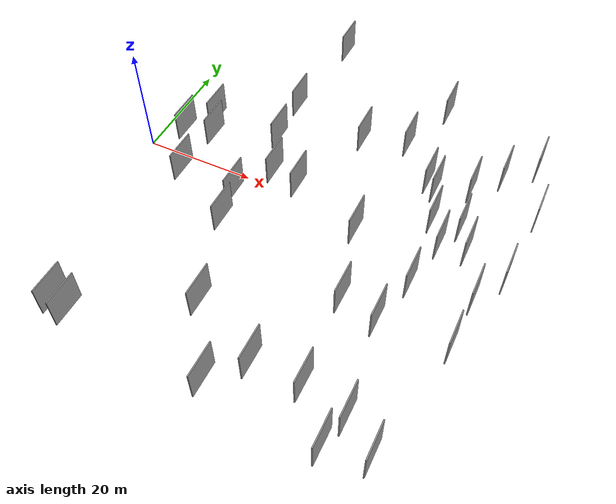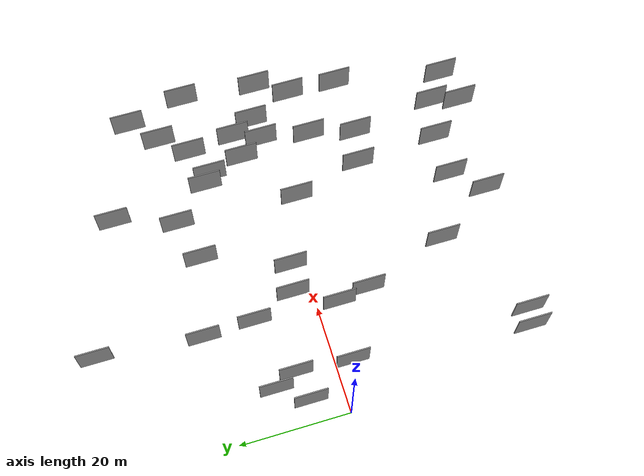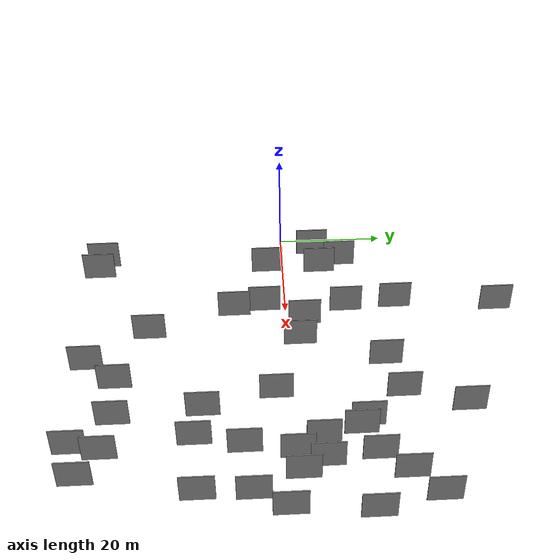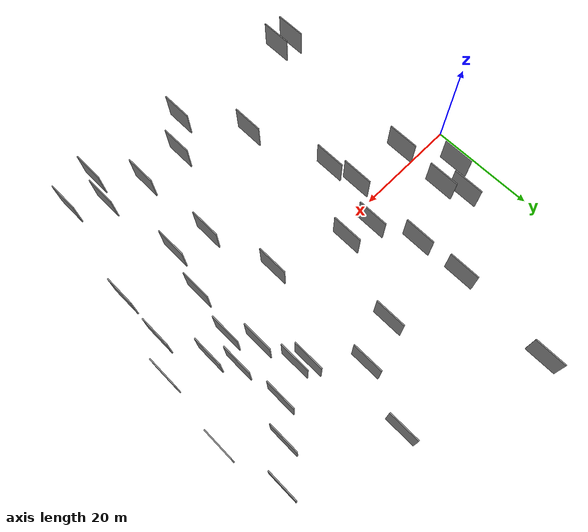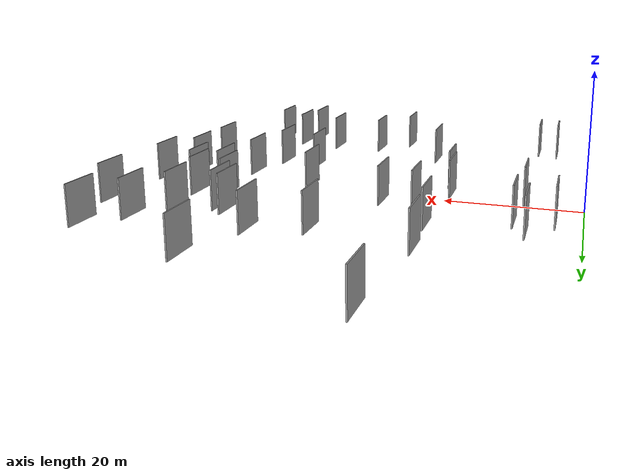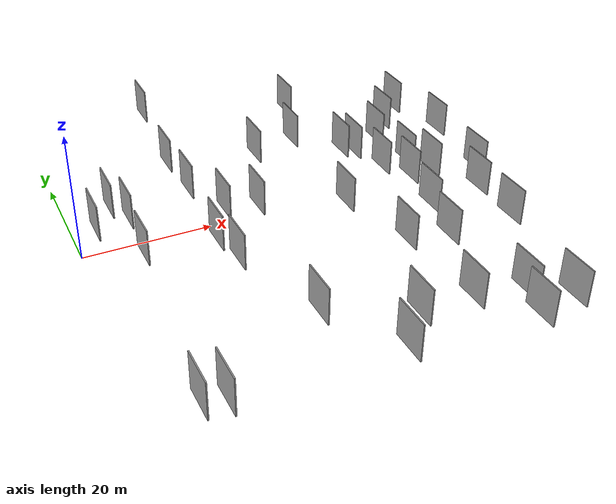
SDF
<sdf version="1.6">
 <world name="default">
  <scene>
   <sky><clouds><speed>12</speed></clouds></sky>
   <ambient>0.4 0.4 0.4 1</ambient>
   <background>0.7 0.7 0.7 1</background>
   <shadows>1</shadows>
  </scene>
  <gravity>0 0 -9.8066</gravity>
  <magnetic_field>6e-06 2.3e-05 -4.2e-05</magnetic_field>
  <physics default="0" name="default_physics" type="ode">
   <ode>
    <solver>
     <type>quick</type>
     <iters>10</iters>
     <sor>1.0</sor>
     <use_dynamic_moi_rescaling>0</use_dynamic_moi_rescaling>
    </solver>
    <constraints>
     <cfm>0</cfm>
     <erp>0.2</erp>
     <contact_max_correcting_vel>100</contact_max_correcting_vel>
     <contact_surface_layer>0.001</contact_surface_layer>
    </constraints>
   </ode>
   <max_step_size>0.004</max_step_size>
   <real_time_factor>1</real_time_factor>
   <real_time_update_rate>250</real_time_update_rate>
  </physics>
  <light name="sun" type="directional">
   <pose>0 0 10 0 0 0</pose>
   <diffuse>0.8 0.8 0.8 1</diffuse>
   <specular>0.2 0.2 0.2 1</specular>
   <attenuation>
    <range>1000</range>
    <constant>0.9</constant>
    <linear>0.01</linear>
    <quadratic>0.001</quadratic>
   </attenuation>
   <direction>-0.5 0.1 -0.9</direction>
  </light>
  <model name="grey_wall_1">
   <static>1</static>
   <pose>60.6106 19.1669 0.0 0.000000 0.000000 1.570796</pose>
   <link name="link">
    <pose>0 0 3.00 0 0 0</pose>
    <collision name="collision"><geometry><box><size>6.00 0.2 6.00</size></box></geometry></collision>
    <visual name="visual">
     <cast_shadows>0</cast_shadows>
     <geometry><box><size>6.00 0.2 6.00</size></box></geometry>
     <material>
      <script>
       <uri>model://grey_wall/materials/scripts</uri>
       <uri>model://grey_wall/materials/textures</uri>
       <name>vrc/grey_wall</name>
      </script>
     </material>
    </visual>
   </link>
  </model>
  <model name="grey_wall_2">
   <static>1</static>
   <pose>59.8423 1.1666 0.0 0.000000 0.000000 1.570796</pose>
   <link name="link">
    <pose>0 0 3.00 0 0 0</pose>
    <collision name="collision"><geometry><box><size>6.00 0.2 6.00</size></box></geometry></collision>
    <visual name="visual">
     <cast_shadows>0</cast_shadows>
     <geometry><box><size>6.00 0.2 6.00</size></box></geometry>
     <material>
      <script>
       <uri>model://grey_wall/materials/scripts</uri>
       <uri>model://grey_wall/materials/textures</uri>
       <name>vrc/grey_wall</name>
      </script>
     </material>
    </visual>
   </link>
  </model>
  <model name="grey_wall_3">
   <static>1</static>
   <pose>25.8539 -25.5041 0.0 0.000000 0.000000 1.570796</pose>
   <link name="link">
    <pose>0 0 3.00 0 0 0</pose>
    <collision name="collision"><geometry><box><size>6.00 0.2 6.00</size></box></geometry></collision>
    <visual name="visual">
     <cast_shadows>0</cast_shadows>
     <geometry><box><size>6.00 0.2 6.00</size></box></geometry>
     <material>
      <script>
       <uri>model://grey_wall/materials/scripts</uri>
       <uri>model://grey_wall/materials/textures</uri>
       <name>vrc/grey_wall</name>
      </script>
     </material>
    </visual>
   </link>
  </model>
  <model name="grey_wall_4">
   <static>1</static>
   <pose>8.4826 -2.9545 0.0 0.000000 0.000000 1.570796</pose>
   <link name="link">
    <pose>0 0 3.00 0 0 0</pose>
    <collision name="collision"><geometry><box><size>6.00 0.2 6.00</size></box></geometry></collision>
    <visual name="visual">
     <cast_shadows>0</cast_shadows>
     <geometry><box><size>6.00 0.2 6.00</size></box></geometry>
     <material>
      <script>
       <uri>model://grey_wall/materials/scripts</uri>
       <uri>model://grey_wall/materials/textures</uri>
       <name>vrc/grey_wall</name>
      </script>
     </material>
    </visual>
   </link>
  </model>
  <model name="grey_wall_5">
   <static>1</static>
   <pose>9.1204 7.1617 0.0 0.000000 0.000000 1.570796</pose>
   <link name="link">
    <pose>0 0 3.00 0 0 0</pose>
    <collision name="collision"><geometry><box><size>6.00 0.2 6.00</size></box></geometry></collision>
    <visual name="visual">
     <cast_shadows>0</cast_shadows>
     <geometry><box><size>6.00 0.2 6.00</size></box></geometry>
     <material>
      <script>
       <uri>model://grey_wall/materials/scripts</uri>
       <uri>model://grey_wall/materials/textures</uri>
       <name>vrc/grey_wall</name>
      </script>
     </material>
    </visual>
   </link>
  </model>
  <model name="grey_wall_6">
   <static>1</static>
   <pose>59.3027 -36.7558 0.0 0.000000 0.000000 1.570796</pose>
   <link name="link">
    <pose>0 0 3.00 0 0 0</pose>
    <collision name="collision"><geometry><box><size>6.00 0.2 6.00</size></box></geometry></collision>
    <visual name="visual">
     <cast_shadows>0</cast_shadows>
     <geometry><box><size>6.00 0.2 6.00</size></box></geometry>
     <material>
      <script>
       <uri>model://grey_wall/materials/scripts</uri>
       <uri>model://grey_wall/materials/textures</uri>
       <name>vrc/grey_wall</name>
      </script>
     </material>
    </visual>
   </link>
  </model>
  <model name="grey_wall_7">
   <static>1</static>
   <pose>28.7849 2.3925 0.0 0.000000 0.000000 1.570796</pose>
   <link name="link">
    <pose>0 0 3.00 0 0 0</pose>
    <collision name="collision"><geometry><box><size>6.00 0.2 6.00</size></box></geometry></collision>
    <visual name="visual">
     <cast_shadows>0</cast_shadows>
     <geometry><box><size>6.00 0.2 6.00</size></box></geometry>
     <material>
      <script>
       <uri>model://grey_wall/materials/scripts</uri>
       <uri>model://grey_wall/materials/textures</uri>
       <name>vrc/grey_wall</name>
      </script>
     </material>
    </visual>
   </link>
  </model>
  <model name="grey_wall_8">
   <static>1</static>
   <pose>46.4390 -31.2597 0.0 0.000000 0.000000 1.570796</pose>
   <link name="link">
    <pose>0 0 3.00 0 0 0</pose>
    <collision name="collision"><geometry><box><size>6.00 0.2 6.00</size></box></geometry></collision>
    <visual name="visual">
     <cast_shadows>0</cast_shadows>
     <geometry><box><size>6.00 0.2 6.00</size></box></geometry>
     <material>
      <script>
       <uri>model://grey_wall/materials/scripts</uri>
       <uri>model://grey_wall/materials/textures</uri>
       <name>vrc/grey_wall</name>
      </script>
     </material>
    </visual>
   </link>
  </model>
  <model name="grey_wall_9">
   <static>1</static>
   <pose>53.7684 -8.4751 0.0 0.000000 0.000000 1.570796</pose>
   <link name="link">
    <pose>0 0 3.00 0 0 0</pose>
    <collision name="collision"><geometry><box><size>6.00 0.2 6.00</size></box></geometry></collision>
    <visual name="visual">
     <cast_shadows>0</cast_shadows>
     <geometry><box><size>6.00 0.2 6.00</size></box></geometry>
     <material>
      <script>
       <uri>model://grey_wall/materials/scripts</uri>
       <uri>model://grey_wall/materials/textures</uri>
       <name>vrc/grey_wall</name>
      </script>
     </material>
    </visual>
   </link>
  </model>
  <model name="grey_wall_10">
   <static>1</static>
   <pose>5.3662 -34.9941 0.0 0.000000 0.000000 1.570796</pose>
   <link name="link">
    <pose>0 0 3.00 0 0 0</pose>
    <collision name="collision"><geometry><box><size>6.00 0.2 6.00</size></box></geometry></collision>
    <visual name="visual">
     <cast_shadows>0</cast_shadows>
     <geometry><box><size>6.00 0.2 6.00</size></box></geometry>
     <material>
      <script>
       <uri>model://grey_wall/materials/scripts</uri>
       <uri>model://grey_wall/materials/textures</uri>
       <name>vrc/grey_wall</name>
      </script>
     </material>
    </visual>
   </link>
  </model>
  <model name="grey_wall_11">
   <static>1</static>
   <pose>3.6694 6.0725 0.0 0.000000 0.000000 1.570796</pose>
   <link name="link">
    <pose>0 0 3.00 0 0 0</pose>
    <collision name="collision"><geometry><box><size>6.00 0.2 6.00</size></box></geometry></collision>
    <visual name="visual">
     <cast_shadows>0</cast_shadows>
     <geometry><box><size>6.00 0.2 6.00</size></box></geometry>
     <material>
      <script>
       <uri>model://grey_wall/materials/scripts</uri>
       <uri>model://grey_wall/materials/textures</uri>
       <name>vrc/grey_wall</name>
      </script>
     </material>
    </visual>
   </link>
  </model>
  <model name="grey_wall_12">
   <static>1</static>
   <pose>54.0076 -33.0351 0.0 0.000000 0.000000 1.570796</pose>
   <link name="link">
    <pose>0 0 3.00 0 0 0</pose>
    <collision name="collision"><geometry><box><size>6.00 0.2 6.00</size></box></geometry></collision>
    <visual name="visual">
     <cast_shadows>0</cast_shadows>
     <geometry><box><size>6.00 0.2 6.00</size></box></geometry>
     <material>
      <script>
       <uri>model://grey_wall/materials/scripts</uri>
       <uri>model://grey_wall/materials/textures</uri>
       <name>vrc/grey_wall</name>
      </script>
     </material>
    </visual>
   </link>
  </model>
  <model name="grey_wall_13">
   <static>1</static>
   <pose>7.2150 11.2109 0.0 0.000000 0.000000 1.570796</pose>
   <link name="link">
    <pose>0 0 3.00 0 0 0</pose>
    <collision name="collision"><geometry><box><size>6.00 0.2 6.00</size></box></geometry></collision>
    <visual name="visual">
     <cast_shadows>0</cast_shadows>
     <geometry><box><size>6.00 0.2 6.00</size></box></geometry>
     <material>
      <script>
       <uri>model://grey_wall/materials/scripts</uri>
       <uri>model://grey_wall/materials/textures</uri>
       <name>vrc/grey_wall</name>
      </script>
     </material>
    </visual>
   </link>
  </model>
  <model name="grey_wall_14">
   <static>1</static>
   <pose>63.6272 -7.1981 0.0 0.000000 0.000000 1.570796</pose>
   <link name="link">
    <pose>0 0 3.00 0 0 0</pose>
    <collision name="collision"><geometry><box><size>6.00 0.2 6.00</size></box></geometry></collision>
    <visual name="visual">
     <cast_shadows>0</cast_shadows>
     <geometry><box><size>6.00 0.2 6.00</size></box></geometry>
     <material>
      <script>
       <uri>model://grey_wall/materials/scripts</uri>
       <uri>model://grey_wall/materials/textures</uri>
       <name>vrc/grey_wall</name>
      </script>
     </material>
    </visual>
   </link>
  </model>
  <model name="grey_wall_15">
   <static>1</static>
   <pose>55.3734 0.4795 0.0 0.000000 0.000000 1.570796</pose>
   <link name="link">
    <pose>0 0 3.00 0 0 0</pose>
    <collision name="collision"><geometry><box><size>6.00 0.2 6.00</size></box></geometry></collision>
    <visual name="visual">
     <cast_shadows>0</cast_shadows>
     <geometry><box><size>6.00 0.2 6.00</size></box></geometry>
     <material>
      <script>
       <uri>model://grey_wall/materials/scripts</uri>
       <uri>model://grey_wall/materials/textures</uri>
       <name>vrc/grey_wall</name>
      </script>
     </material>
    </visual>
   </link>
  </model>
  <model name="grey_wall_16">
   <static>1</static>
   <pose>20.5812 -9.6640 0.0 0.000000 0.000000 1.570796</pose>
   <link name="link">
    <pose>0 0 3.00 0 0 0</pose>
    <collision name="collision"><geometry><box><size>6.00 0.2 6.00</size></box></geometry></collision>
    <visual name="visual">
     <cast_shadows>0</cast_shadows>
     <geometry><box><size>6.00 0.2 6.00</size></box></geometry>
     <material>
      <script>
       <uri>model://grey_wall/materials/scripts</uri>
       <uri>model://grey_wall/materials/textures</uri>
       <name>vrc/grey_wall</name>
      </script>
     </material>
    </visual>
   </link>
  </model>
  <model name="grey_wall_17">
   <static>1</static>
   <pose>34.6603 17.5819 0.0 0.000000 0.000000 1.570796</pose>
   <link name="link">
    <pose>0 0 3.00 0 0 0</pose>
    <collision name="collision"><geometry><box><size>6.00 0.2 6.00</size></box></geometry></collision>
    <visual name="visual">
     <cast_shadows>0</cast_shadows>
     <geometry><box><size>6.00 0.2 6.00</size></box></geometry>
     <material>
      <script>
       <uri>model://grey_wall/materials/scripts</uri>
       <uri>model://grey_wall/materials/textures</uri>
       <name>vrc/grey_wall</name>
      </script>
     </material>
    </visual>
   </link>
  </model>
  <model name="grey_wall_18">
   <static>1</static>
   <pose>41.8246 -2.5947 0.0 0.000000 0.000000 1.570796</pose>
   <link name="link">
    <pose>0 0 3.00 0 0 0</pose>
    <collision name="collision"><geometry><box><size>6.00 0.2 6.00</size></box></geometry></collision>
    <visual name="visual">
     <cast_shadows>0</cast_shadows>
     <geometry><box><size>6.00 0.2 6.00</size></box></geometry>
     <material>
      <script>
       <uri>model://grey_wall/materials/scripts</uri>
       <uri>model://grey_wall/materials/textures</uri>
       <name>vrc/grey_wall</name>
      </script>
     </material>
    </visual>
   </link>
  </model>
  <model name="grey_wall_19">
   <static>1</static>
   <pose>20.3367 11.4685 0.0 0.000000 0.000000 1.570796</pose>
   <link name="link">
    <pose>0 0 3.00 0 0 0</pose>
    <collision name="collision"><geometry><box><size>6.00 0.2 6.00</size></box></geometry></collision>
    <visual name="visual">
     <cast_shadows>0</cast_shadows>
     <geometry><box><size>6.00 0.2 6.00</size></box></geometry>
     <material>
      <script>
       <uri>model://grey_wall/materials/scripts</uri>
       <uri>model://grey_wall/materials/textures</uri>
       <name>vrc/grey_wall</name>
      </script>
     </material>
    </visual>
   </link>
  </model>
  <model name="grey_wall_20">
   <static>1</static>
   <pose>52.5569 -38.2543 0.0 0.000000 0.000000 1.570796</pose>
   <link name="link">
    <pose>0 0 3.00 0 0 0</pose>
    <collision name="collision"><geometry><box><size>6.00 0.2 6.00</size></box></geometry></collision>
    <visual name="visual">
     <cast_shadows>0</cast_shadows>
     <geometry><box><size>6.00 0.2 6.00</size></box></geometry>
     <material>
      <script>
       <uri>model://grey_wall/materials/scripts</uri>
       <uri>model://grey_wall/materials/textures</uri>
       <name>vrc/grey_wall</name>
      </script>
     </material>
    </visual>
   </link>
  </model>
  <model name="grey_wall_21">
   <static>1</static>
   <pose>46.4902 31.0436 0.0 0.000000 0.000000 1.570796</pose>
   <link name="link">
    <pose>0 0 3.00 0 0 0</pose>
    <collision name="collision"><geometry><box><size>6.00 0.2 6.00</size></box></geometry></collision>
    <visual name="visual">
     <cast_shadows>0</cast_shadows>
     <geometry><box><size>6.00 0.2 6.00</size></box></geometry>
     <material>
      <script>
       <uri>model://grey_wall/materials/scripts</uri>
       <uri>model://grey_wall/materials/textures</uri>
       <name>vrc/grey_wall</name>
      </script>
     </material>
    </visual>
   </link>
  </model>
  <model name="grey_wall_22">
   <static>1</static>
   <pose>63.2864 -16.4735 0.0 0.000000 0.000000 1.570796</pose>
   <link name="link">
    <pose>0 0 3.00 0 0 0</pose>
    <collision name="collision"><geometry><box><size>6.00 0.2 6.00</size></box></geometry></collision>
    <visual name="visual">
     <cast_shadows>0</cast_shadows>
     <geometry><box><size>6.00 0.2 6.00</size></box></geometry>
     <material>
      <script>
       <uri>model://grey_wall/materials/scripts</uri>
       <uri>model://grey_wall/materials/textures</uri>
       <name>vrc/grey_wall</name>
      </script>
     </material>
    </visual>
   </link>
  </model>
  <model name="grey_wall_23">
   <static>1</static>
   <pose>57.4566 5.3996 0.0 0.000000 0.000000 1.570796</pose>
   <link name="link">
    <pose>0 0 3.00 0 0 0</pose>
    <collision name="collision"><geometry><box><size>6.00 0.2 6.00</size></box></geometry></collision>
    <visual name="visual">
     <cast_shadows>0</cast_shadows>
     <geometry><box><size>6.00 0.2 6.00</size></box></geometry>
     <material>
      <script>
       <uri>model://grey_wall/materials/scripts</uri>
       <uri>model://grey_wall/materials/textures</uri>
       <name>vrc/grey_wall</name>
      </script>
     </material>
    </visual>
   </link>
  </model>
  <model name="grey_wall_24">
   <static>1</static>
   <pose>65.5141 23.8808 0.0 0.000000 0.000000 1.570796</pose>
   <link name="link">
    <pose>0 0 3.00 0 0 0</pose>
    <collision name="collision"><geometry><box><size>6.00 0.2 6.00</size></box></geometry></collision>
    <visual name="visual">
     <cast_shadows>0</cast_shadows>
     <geometry><box><size>6.00 0.2 6.00</size></box></geometry>
     <material>
      <script>
       <uri>model://grey_wall/materials/scripts</uri>
       <uri>model://grey_wall/materials/textures</uri>
       <name>vrc/grey_wall</name>
      </script>
     </material>
    </visual>
   </link>
  </model>
  <model name="grey_wall_25">
   <static>1</static>
   <pose>21.5370 39.8752 0.0 0.000000 0.000000 1.570796</pose>
   <link name="link">
    <pose>0 0 3.00 0 0 0</pose>
    <collision name="collision"><geometry><box><size>6.00 0.2 6.00</size></box></geometry></collision>
    <visual name="visual">
     <cast_shadows>0</cast_shadows>
     <geometry><box><size>6.00 0.2 6.00</size></box></geometry>
     <material>
      <script>
       <uri>model://grey_wall/materials/scripts</uri>
       <uri>model://grey_wall/materials/textures</uri>
       <name>vrc/grey_wall</name>
      </script>
     </material>
    </visual>
   </link>
  </model>
  <model name="grey_wall_26">
   <static>1</static>
   <pose>51.6937 -17.0711 0.0 0.000000 0.000000 1.570796</pose>
   <link name="link">
    <pose>0 0 3.00 0 0 0</pose>
    <collision name="collision"><geometry><box><size>6.00 0.2 6.00</size></box></geometry></collision>
    <visual name="visual">
     <cast_shadows>0</cast_shadows>
     <geometry><box><size>6.00 0.2 6.00</size></box></geometry>
     <material>
      <script>
       <uri>model://grey_wall/materials/scripts</uri>
       <uri>model://grey_wall/materials/textures</uri>
       <name>vrc/grey_wall</name>
      </script>
     </material>
    </visual>
   </link>
  </model>
  <model name="grey_wall_27">
   <static>1</static>
   <pose>42.6340 19.9291 0.0 0.000000 0.000000 1.570796</pose>
   <link name="link">
    <pose>0 0 3.00 0 0 0</pose>
    <collision name="collision"><geometry><box><size>6.00 0.2 6.00</size></box></geometry></collision>
    <visual name="visual">
     <cast_shadows>0</cast_shadows>
     <geometry><box><size>6.00 0.2 6.00</size></box></geometry>
     <material>
      <script>
       <uri>model://grey_wall/materials/scripts</uri>
       <uri>model://grey_wall/materials/textures</uri>
       <name>vrc/grey_wall</name>
      </script>
     </material>
    </visual>
   </link>
  </model>
  <model name="grey_wall_28">
   <static>1</static>
   <pose>33.1658 -36.7118 0.0 0.000000 0.000000 1.570796</pose>
   <link name="link">
    <pose>0 0 3.00 0 0 0</pose>
    <collision name="collision"><geometry><box><size>6.00 0.2 6.00</size></box></geometry></collision>
    <visual name="visual">
     <cast_shadows>0</cast_shadows>
     <geometry><box><size>6.00 0.2 6.00</size></box></geometry>
     <material>
      <script>
       <uri>model://grey_wall/materials/scripts</uri>
       <uri>model://grey_wall/materials/textures</uri>
       <name>vrc/grey_wall</name>
      </script>
     </material>
    </visual>
   </link>
  </model>
  <model name="grey_wall_29">
   <static>1</static>
   <pose>67.0314 -1.3515 0.0 0.000000 0.000000 1.570796</pose>
   <link name="link">
    <pose>0 0 3.00 0 0 0</pose>
    <collision name="collision"><geometry><box><size>6.00 0.2 6.00</size></box></geometry></collision>
    <visual name="visual">
     <cast_shadows>0</cast_shadows>
     <geometry><box><size>6.00 0.2 6.00</size></box></geometry>
     <material>
      <script>
       <uri>model://grey_wall/materials/scripts</uri>
       <uri>model://grey_wall/materials/textures</uri>
       <name>vrc/grey_wall</name>
      </script>
     </material>
    </visual>
   </link>
  </model>
  <model name="grey_wall_30">
   <static>1</static>
   <pose>8.5747 -35.7429 0.0 0.000000 0.000000 1.570796</pose>
   <link name="link">
    <pose>0 0 3.00 0 0 0</pose>
    <collision name="collision"><geometry><box><size>6.00 0.2 6.00</size></box></geometry></collision>
    <visual name="visual">
     <cast_shadows>0</cast_shadows>
     <geometry><box><size>6.00 0.2 6.00</size></box></geometry>
     <material>
      <script>
       <uri>model://grey_wall/materials/scripts</uri>
       <uri>model://grey_wall/materials/textures</uri>
       <name>vrc/grey_wall</name>
      </script>
     </material>
    </visual>
   </link>
  </model>
  <model name="grey_wall_31">
   <static>1</static>
   <pose>45.2693 -15.6107 0.0 0.000000 0.000000 1.570796</pose>
   <link name="link">
    <pose>0 0 3.00 0 0 0</pose>
    <collision name="collision"><geometry><box><size>6.00 0.2 6.00</size></box></geometry></collision>
    <visual name="visual">
     <cast_shadows>0</cast_shadows>
     <geometry><box><size>6.00 0.2 6.00</size></box></geometry>
     <material>
      <script>
       <uri>model://grey_wall/materials/scripts</uri>
       <uri>model://grey_wall/materials/textures</uri>
       <name>vrc/grey_wall</name>
      </script>
     </material>
    </visual>
   </link>
  </model>
  <model name="grey_wall_32">
   <static>1</static>
   <pose>52.5953 5.0346 0.0 0.000000 0.000000 1.570796</pose>
   <link name="link">
    <pose>0 0 3.00 0 0 0</pose>
    <collision name="collision"><geometry><box><size>6.00 0.2 6.00</size></box></geometry></collision>
    <visual name="visual">
     <cast_shadows>0</cast_shadows>
     <geometry><box><size>6.00 0.2 6.00</size></box></geometry>
     <material>
      <script>
       <uri>model://grey_wall/materials/scripts</uri>
       <uri>model://grey_wall/materials/textures</uri>
       <name>vrc/grey_wall</name>
      </script>
     </material>
    </visual>
   </link>
  </model>
  <model name="grey_wall_33">
   <static>1</static>
   <pose>50.7353 11.6532 0.0 0.000000 0.000000 1.570796</pose>
   <link name="link">
    <pose>0 0 3.00 0 0 0</pose>
    <collision name="collision"><geometry><box><size>6.00 0.2 6.00</size></box></geometry></collision>
    <visual name="visual">
     <cast_shadows>0</cast_shadows>
     <geometry><box><size>6.00 0.2 6.00</size></box></geometry>
     <material>
      <script>
       <uri>model://grey_wall/materials/scripts</uri>
       <uri>model://grey_wall/materials/textures</uri>
       <name>vrc/grey_wall</name>
      </script>
     </material>
    </visual>
   </link>
  </model>
  <model name="grey_wall_34">
   <static>1</static>
   <pose>23.5591 3.4864 0.0 0.000000 0.000000 1.570796</pose>
   <link name="link">
    <pose>0 0 3.00 0 0 0</pose>
    <collision name="collision"><geometry><box><size>6.00 0.2 6.00</size></box></geometry></collision>
    <visual name="visual">
     <cast_shadows>0</cast_shadows>
     <geometry><box><size>6.00 0.2 6.00</size></box></geometry>
     <material>
      <script>
       <uri>model://grey_wall/materials/scripts</uri>
       <uri>model://grey_wall/materials/textures</uri>
       <name>vrc/grey_wall</name>
      </script>
     </material>
    </visual>
   </link>
  </model>
  <model name="grey_wall_35">
   <static>1</static>
   <pose>56.4329 14.2457 0.0 0.000000 0.000000 1.570796</pose>
   <link name="link">
    <pose>0 0 3.00 0 0 0</pose>
    <collision name="collision"><geometry><box><size>6.00 0.2 6.00</size></box></geometry></collision>
    <visual name="visual">
     <cast_shadows>0</cast_shadows>
     <geometry><box><size>6.00 0.2 6.00</size></box></geometry>
     <material>
      <script>
       <uri>model://grey_wall/materials/scripts</uri>
       <uri>model://grey_wall/materials/textures</uri>
       <name>vrc/grey_wall</name>
      </script>
     </material>
    </visual>
   </link>
  </model>
  <model name="grey_wall_36">
   <static>1</static>
   <pose>68.2515 12.8195 0.0 0.000000 0.000000 1.570796</pose>
   <link name="link">
    <pose>0 0 3.00 0 0 0</pose>
    <collision name="collision"><geometry><box><size>6.00 0.2 6.00</size></box></geometry></collision>
    <visual name="visual">
     <cast_shadows>0</cast_shadows>
     <geometry><box><size>6.00 0.2 6.00</size></box></geometry>
     <material>
      <script>
       <uri>model://grey_wall/materials/scripts</uri>
       <uri>model://grey_wall/materials/textures</uri>
       <name>vrc/grey_wall</name>
      </script>
     </material>
    </visual>
   </link>
  </model>
  <model name="grey_wall_37">
   <static>1</static>
   <pose>19.5190 -3.9359 0.0 0.000000 0.000000 1.570796</pose>
   <link name="link">
    <pose>0 0 3.00 0 0 0</pose>
    <collision name="collision"><geometry><box><size>6.00 0.2 6.00</size></box></geometry></collision>
    <visual name="visual">
     <cast_shadows>0</cast_shadows>
     <geometry><box><size>6.00 0.2 6.00</size></box></geometry>
     <material>
      <script>
       <uri>model://grey_wall/materials/scripts</uri>
       <uri>model://grey_wall/materials/textures</uri>
       <name>vrc/grey_wall</name>
      </script>
     </material>
    </visual>
   </link>
  </model>
  <model name="grey_wall_38">
   <static>1</static>
   <pose>19.8801 20.8399 0.0 0.000000 0.000000 1.570796</pose>
   <link name="link">
    <pose>0 0 3.00 0 0 0</pose>
    <collision name="collision"><geometry><box><size>6.00 0.2 6.00</size></box></geometry></collision>
    <visual name="visual">
     <cast_shadows>0</cast_shadows>
     <geometry><box><size>6.00 0.2 6.00</size></box></geometry>
     <material>
      <script>
       <uri>model://grey_wall/materials/scripts</uri>
       <uri>model://grey_wall/materials/textures</uri>
       <name>vrc/grey_wall</name>
      </script>
     </material>
    </visual>
   </link>
  </model>
  <model name="grey_wall_39">
   <static>1</static>
   <pose>37.9882 -31.3109 0.0 0.000000 0.000000 1.570796</pose>
   <link name="link">
    <pose>0 0 3.00 0 0 0</pose>
    <collision name="collision"><geometry><box><size>6.00 0.2 6.00</size></box></geometry></collision>
    <visual name="visual">
     <cast_shadows>0</cast_shadows>
     <geometry><box><size>6.00 0.2 6.00</size></box></geometry>
     <material>
      <script>
       <uri>model://grey_wall/materials/scripts</uri>
       <uri>model://grey_wall/materials/textures</uri>
       <name>vrc/grey_wall</name>
      </script>
     </material>
    </visual>
   </link>
  </model>
  <model name="grey_wall_40">
   <static>1</static>
   <pose>48.9820 13.0044 0.0 0.000000 0.000000 1.570796</pose>
   <link name="link">
    <pose>0 0 3.00 0 0 0</pose>
    <collision name="collision"><geometry><box><size>6.00 0.2 6.00</size></box></geometry></collision>
    <visual name="visual">
     <cast_shadows>0</cast_shadows>
     <geometry><box><size>6.00 0.2 6.00</size></box></geometry>
     <material>
      <script>
       <uri>model://grey_wall/materials/scripts</uri>
       <uri>model://grey_wall/materials/textures</uri>
       <name>vrc/grey_wall</name>
      </script>
     </material>
    </visual>
   </link>
  </model>
 </world>
</sdf>
